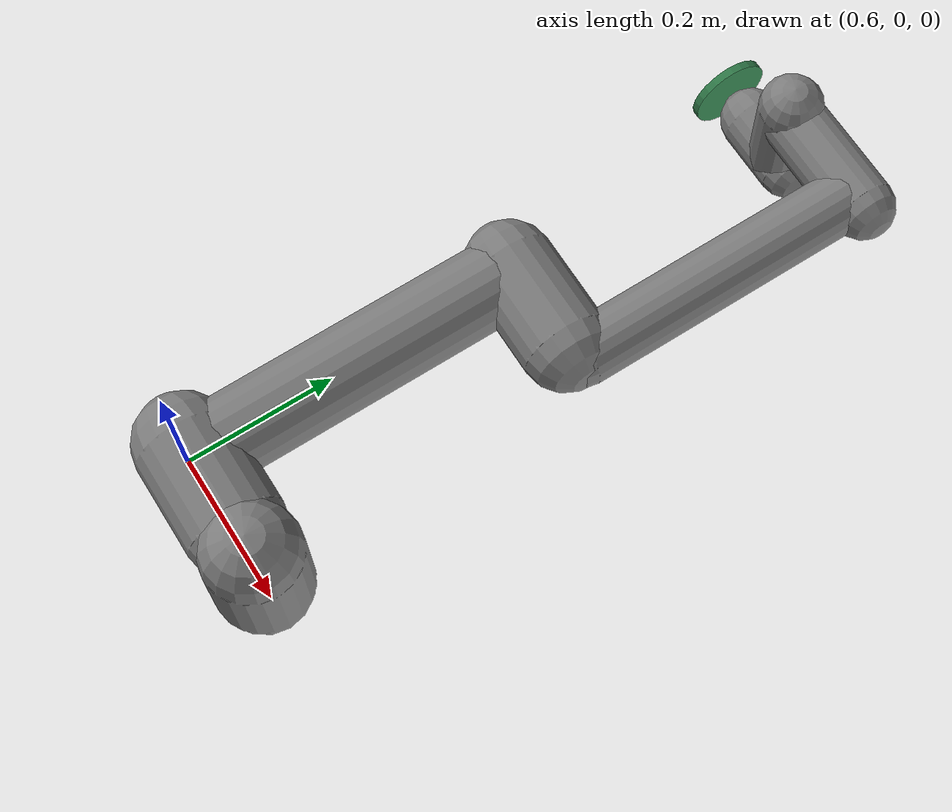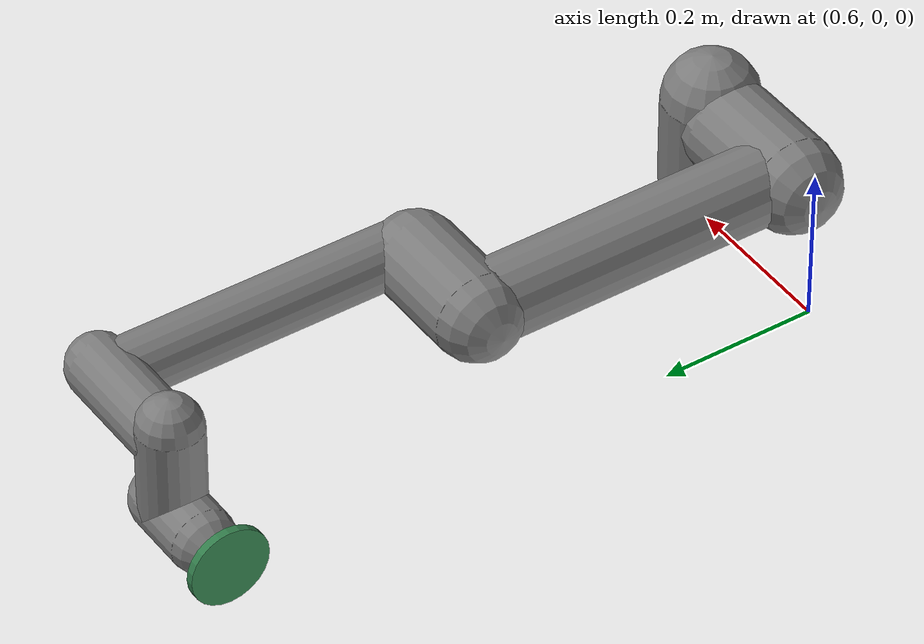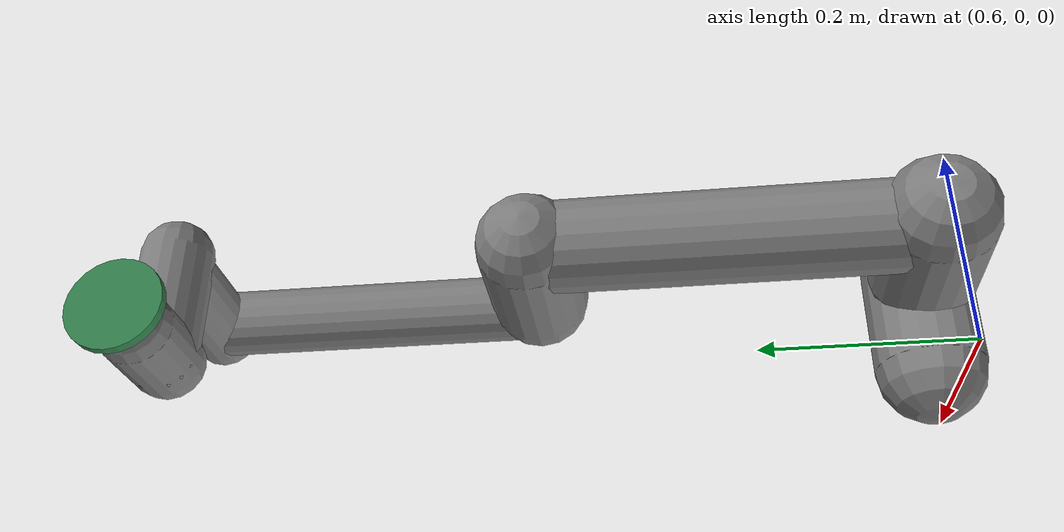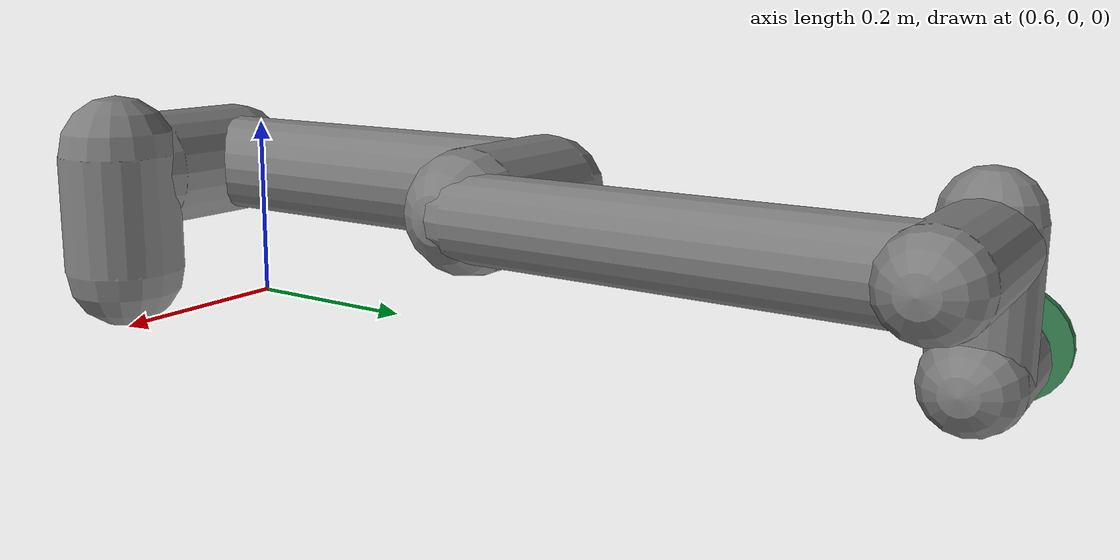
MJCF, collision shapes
<mujoco model="ur5e">
  <compiler angle="radian" meshdir="assets" autolimits="true"/>
  <option integrator="implicitfast"/>

  <default>
    <default class="ur5e">
      <material specular="0.5" shininess="0.25"/>
      <joint axis="0 1 0" range="-6.28319 6.28319" armature="0.1"/>
      <general gaintype="fixed" biastype="affine" ctrlrange="-6.2831 6.2831" gainprm="2000" biasprm="0 -2000 -400"
        forcerange="-150 150"/>
      <default class="size3">
        <default class="size3_limited">
          <joint range="-3.1415 3.1415"/>
          <general ctrlrange="-3.1415 3.1415"/>
        </default>
      </default>
      <default class="size1">
        <general gainprm="500" biasprm="0 -500 -100" forcerange="-28 28"/>
      </default>
      <default class="visual">
        <geom type="mesh" contype="0" conaffinity="0" group="2"/>
      </default>
      <default class="collision">
        <geom type="capsule" group="3"/>
        <default class="eef_collision">
          <geom type="cylinder"/>
        </default>
      </default>
      <default class="active_adhesion">
      <geom rgba=".1 0 .5 1" margin=".01" gap=".01" size="3.4 3.4 3.4" />
      </default>

      <site size="0.001" rgba="0.5 0.5 0.5 0.3" group="4"/>
    </default>
  </default>

  <asset>
    <material class="ur5e" name="black" rgba="0.033 0.033 0.033 1"/>
    <material class="ur5e" name="jointgray" rgba="0.278 0.278 0.278 1"/>
    <material class="ur5e" name="linkgray" rgba="0.82 0.82 0.82 1"/>
    <material class="ur5e" name="urblue" rgba="0.49 0.678 0.8 1"/>

    <mesh file="base_0.obj"/>
    <mesh file="base_1.obj"/>
    <mesh file="shoulder_0.obj"/>
    <mesh file="shoulder_1.obj"/>
    <mesh file="shoulder_2.obj"/>
    <mesh file="upperarm_0.obj"/>
    <mesh file="upperarm_1.obj"/>
    <mesh file="upperarm_2.obj"/>
    <mesh file="upperarm_3.obj"/>
    <mesh file="forearm_0.obj"/>
    <mesh file="forearm_1.obj"/>
    <mesh file="forearm_2.obj"/>
    <mesh file="forearm_3.obj"/>
    <mesh file="wrist1_0.obj"/>
    <mesh file="wrist1_1.obj"/>
    <mesh file="wrist1_2.obj"/>
    <mesh file="wrist2_0.obj"/>
    <mesh file="wrist2_1.obj"/>
    <mesh file="wrist2_2.obj"/>
    <mesh file="wrist3.obj"/>
  </asset>

  <worldbody>
    <light name="spotlight" mode="targetbodycom" target="wrist_2_link" pos="0 -1 2"/>
    <body name="base" pos="0.8 0 0" quat="1 0 0 1" childclass="ur5e">
      <inertial mass="4.0" pos="0 0 0" diaginertia="0.00443333156 0.00443333156 0.0072"/>
      <geom mesh="base_0" material="black" class="visual"/>
      <geom mesh="base_1" material="jointgray" class="visual"/>
      <body name="shoulder_link" pos="0 0 0.163">
        <inertial mass="3.7" pos="0 0 0" diaginertia="0.0102675 0.0102675 0.00666"/>
        <joint name="shoulder_pan_joint" class="size3" axis="0 0 1"/>
        <geom mesh="shoulder_0" material="urblue" class="visual"/>
        <geom mesh="shoulder_1" material="black" class="visual"/>
        <geom mesh="shoulder_2" material="jointgray" class="visual"/>
        <geom class="collision" size="0.06 0.06" pos="0 0 -0.04"/>
        <body name="upper_arm_link" pos="0 0.138 0" quat="1 0 1 0">
          <inertial mass="8.393" pos="0 0 0.2125" diaginertia="0.133886 0.133886 0.0151074"/>
          <joint name="shoulder_lift_joint" class="size3"/>
          <geom mesh="upperarm_0" material="linkgray" class="visual"/>
          <geom mesh="upperarm_1" material="black" class="visual"/>
          <geom mesh="upperarm_2" material="jointgray" class="visual"/>
          <geom mesh="upperarm_3" material="urblue" class="visual"/>
          <geom class="collision" pos="0 -0.04 0" quat="1 1 0 0" size="0.06 0.06"/>
          <geom class="collision" size="0.05 0.2" pos="0 0 0.2"/>
          <body name="forearm_link" pos="0 -0.131 0.425">
            <inertial mass="2.275" pos="0 0 0.196" diaginertia="0.0311796 0.0311796 0.004095"/>
            <joint name="elbow_joint" class="size3_limited"/>
            <geom mesh="forearm_0" material="urblue" class="visual"/>
            <geom mesh="forearm_1" material="linkgray" class="visual"/>
            <geom mesh="forearm_2" material="black" class="visual"/>
            <geom mesh="forearm_3" material="jointgray" class="visual"/>
            <geom class="collision" pos="0 0.08 0" quat="1 1 0 0" size="0.055 0.06"/>
            <geom class="collision" size="0.038 0.19" pos="0 0 0.2"/>
            <body name="wrist_1_link" pos="0 0 0.392" quat="1 0 1 0">
              <inertial mass="1.219" pos="0 0.127 0" diaginertia="0.0025599 0.0025599 0.0021942"/>
              <joint name="wrist_1_joint" class="size1"/>
              <geom mesh="wrist1_0" material="black" class="visual"/>
              <geom mesh="wrist1_1" material="urblue" class="visual"/>
              <geom mesh="wrist1_2" material="jointgray" class="visual"/>
              <geom class="collision" pos="0 0.05 0" quat="1 1 0 0" size="0.04 0.07"/>
              <body name="wrist_2_link" pos="0 0.127 0">
                <inertial mass="1.219" pos="0 0 0.1" diaginertia="0.0025599 0.0025599 0.0021942"/>
                <joint name="wrist_2_joint" axis="0 0 1" class="size1"/>
                <geom mesh="wrist2_0" material="black" class="visual"/>
                <geom mesh="wrist2_1" material="urblue" class="visual"/>
                <geom mesh="wrist2_2" material="jointgray" class="visual"/>
                <geom class="collision" size="0.04 0.06" pos="0 0 0.04"/>
                <geom class="collision" pos="0 0.02 0.1" quat="1 1 0 0" size="0.04 0.04"/>
                <body name="wrist_3_link" pos="0 0 0.1">
                  <inertial mass="0.1889" pos="0 0.0771683 0" quat="1 0 0 1"
                    diaginertia="0.000132134 9.90863e-05 9.90863e-05"/>
                  <joint name="wrist_3_joint" class="size1"/>
                  <geom material="linkgray" mesh="wrist3" class="visual"/>
                  <geom name="adhesion_gripper" type="sphere" size="0.001 0.0001 0.01" pos="0 0.08 0" priority="2" margin="0.01" gap="0.01" rgba="0.8 0.5 0.5 1"/>
                  <body name="4boxes" pos=".002 0.12 0" childclass="active_adhesion" quat="1 1 0 0">
                    <joint name="arm3" damping=".01" pos="0 -.03 0"/>
                    <geom type="cylinder" name="eef" size="0.05 0.005" pos="0 0 0.01" quat="1 0 0 0" rgba="0.2 0.5 0.3 1" contype="3" conaffinity="3"/>
                    <site name="attachment_site" pos="0 0 0" quat="1 0 0 0" rgba="1 0 0 1"/>
                    </body>
                </body>
              </body>
            </body>
          </body>
        </body>
      </body>
    </body>
  </worldbody>

  <actuator>
    <general class="size3" name="shoulder_pan" joint="shoulder_pan_joint"/>
    <general class="size3" name="shoulder_lift" joint="shoulder_lift_joint"/>
    <general class="size3_limited" name="elbow" joint="elbow_joint"/>
    <general class="size1" name="wrist_1" joint="wrist_1_joint"/>
    <general class="size1" name="wrist_2" joint="wrist_2_joint"/>
    <general class="size1" name="wrist_3" joint="wrist_3_joint"/>
    <adhesion name="adhere_wrist" body="4boxes" ctrlrange="0 1" gain="1050"/>
  </actuator>
  <sensor>
      <!-- Sensors for Joint Positions -->
      <jointpos name="shoulder_pan_pos" joint="shoulder_pan_joint"/>
      <jointpos name="shoulder_lift_pos" joint="shoulder_lift_joint"/>
      <jointpos name="elbow_pos" joint="elbow_joint"/>
      <jointpos name="wrist_1_pos" joint="wrist_1_joint"/>
      <jointpos name="wrist_2_pos" joint="wrist_2_joint"/>
      <jointpos name="wrist_3_pos" joint="wrist_3_joint"/>

      <!-- Sensors for Joint Velocities -->
      <jointvel name="shoulder_pan_vel" joint="shoulder_pan_joint"/>
      <jointvel name="shoulder_lift_vel" joint="shoulder_lift_joint"/>
      <jointvel name="elbow_vel" joint="elbow_joint"/>
      <jointvel name="wrist_1_vel" joint="wrist_1_joint"/>
      <jointvel name="wrist_2_vel" joint="wrist_2_joint"/>
      <jointvel name="wrist_3_vel" joint="wrist_3_joint"/>

  </sensor>
</mujoco>
